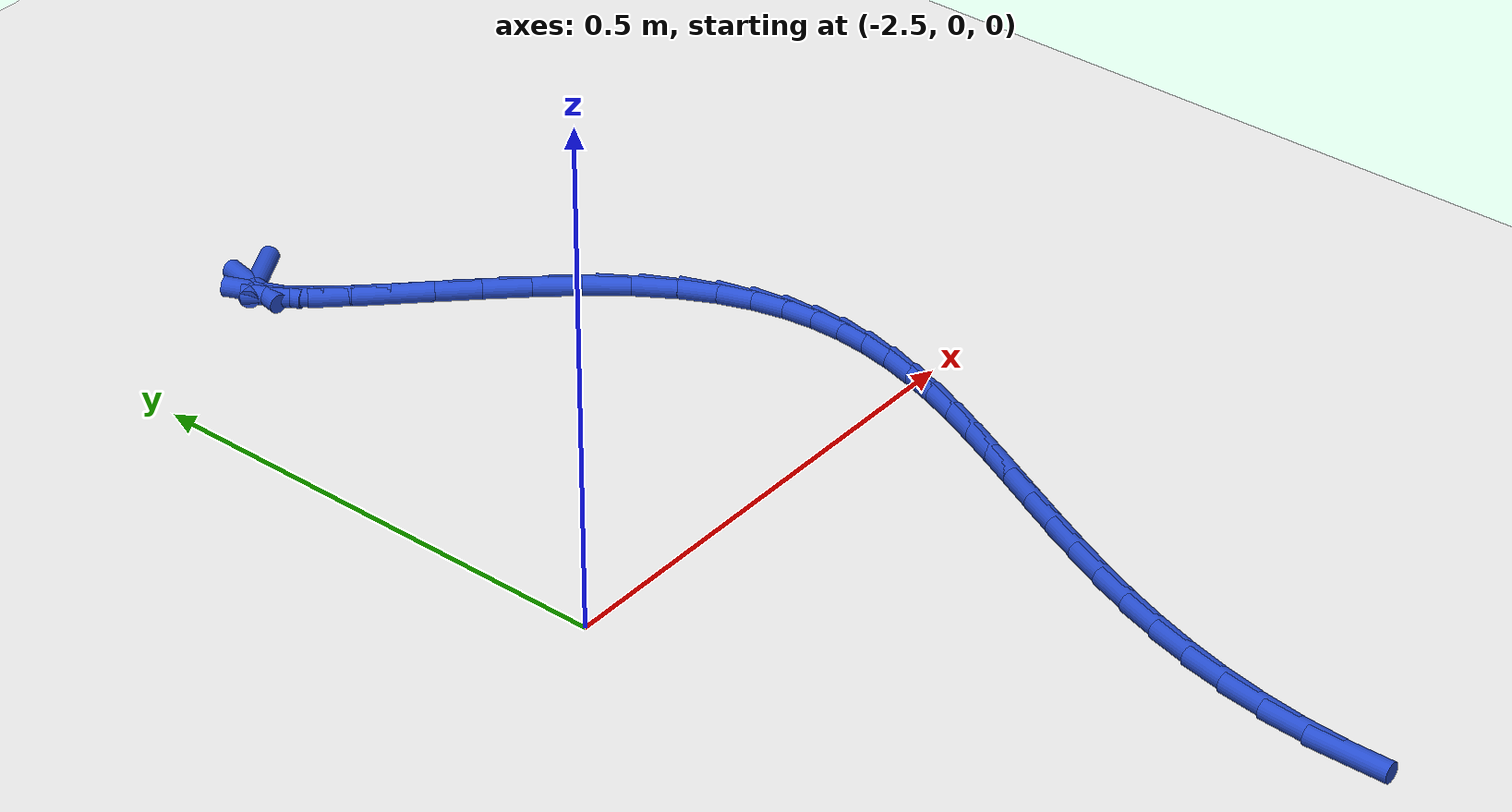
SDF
<sdf version="1.6">
 <world name="default">
  <model name="ground_plane">
   <static>1</static>
   <link name="link">
    <collision name="collision">
     <geometry><plane><normal>0 0 1</normal><size>100 100</size></plane></geometry>
     <surface><friction><ode><mu>100</mu><mu2>50</mu2></ode></friction></surface>
    </collision>
    <visual name="visual">
     <cast_shadows>0</cast_shadows>
     <geometry><plane><normal>0 0 1</normal><size>100 100</size></plane></geometry>
     <material>
      <script><uri>file://media/materials/scripts/gazebo.material</uri><name>Gazebo/WhiteGlow</name></script>
     </material>
    </visual>
   </link>
  </model>
  <model name="line">
   <link name="link_92">
    <pose>-2.295082335609407 0.5904482603423411 0.01 0 1.57 0.5165927510318733</pose>
    <collision name="collision">
     <geometry><cylinder><radius>0.01</radius><length>0.08</length></cylinder></geometry>
    </collision>
    <visual name="visual">
     <material>
      <script><name>Gazebo/Blue</name><uri>file://media/materials/scripts/gazebo.material</uri></script>
     </material>
     <geometry><cylinder><radius>0.01</radius><length>0.08</length></cylinder></geometry>
    </visual>
   </link>
   <link name="link_93">
    <pose>-2.3094861240235307 0.5822662404114661 0.01 0 1.57 1.3817698889250352</pose>
    <collision name="collision">
     <geometry><cylinder><radius>0.01</radius><length>0.08</length></cylinder></geometry>
    </collision>
    <visual name="visual">
     <material>
      <script><name>Gazebo/Blue</name><uri>file://media/materials/scripts/gazebo.material</uri></script>
     </material>
     <geometry><cylinder><radius>0.01</radius><length>0.08</length></cylinder></geometry>
    </visual>
   </link>
   <link name="link_94">
    <pose>-2.3120854596187232 0.5686792380977035 0.01 0 1.57 -1.1672139131677126</pose>
    <collision name="collision">
     <geometry><cylinder><radius>0.01</radius><length>0.08</length></cylinder></geometry>
    </collision>
    <visual name="visual">
     <material>
      <script><name>Gazebo/Blue</name><uri>file://media/materials/scripts/gazebo.material</uri></script>
     </material>
     <geometry><cylinder><radius>0.01</radius><length>0.08</length></cylinder></geometry>
    </visual>
   </link>
   <link name="link_95">
    <pose>-2.304131943537028 0.5500537150005254 0.01 0 1.57 -0.942856019653997</pose>
    <collision name="collision">
     <geometry><cylinder><radius>0.01</radius><length>0.08</length></cylinder></geometry>
    </collision>
    <visual name="visual">
     <material>
      <script><name>Gazebo/Blue</name><uri>file://media/materials/scripts/gazebo.material</uri></script>
     </material>
     <geometry><cylinder><radius>0.01</radius><length>0.08</length></cylinder></geometry>
    </visual>
   </link>
   <link name="link_96">
    <pose>-2.2874250323451846 0.5270403252279731 0.01 0 1.57 -0.8466122772430559</pose>
    <collision name="collision">
     <geometry><cylinder><radius>0.01</radius><length>0.08</length></cylinder></geometry>
    </collision>
    <visual name="visual">
     <material>
      <script><name>Gazebo/Blue</name><uri>file://media/materials/scripts/gazebo.material</uri></script>
     </material>
     <geometry><cylinder><radius>0.01</radius><length>0.08</length></cylinder></geometry>
    </visual>
   </link>
   <link name="link_97">
    <pose>-2.263764182609938 0.5002897228880877 0.01 0 1.57 -0.8028181515578986</pose>
    <collision name="collision">
     <geometry><cylinder><radius>0.01</radius><length>0.08</length></cylinder></geometry>
    </collision>
    <visual name="visual">
     <material>
      <script><name>Gazebo/Blue</name><uri>file://media/materials/scripts/gazebo.material</uri></script>
     </material>
     <geometry><cylinder><radius>0.01</radius><length>0.08</length></cylinder></geometry>
    </visual>
   </link>
   <link name="link_98">
    <pose>-2.234948850898027 0.4704525620889099 0.01 0 1.57 -0.7869919325985835</pose>
    <collision name="collision">
     <geometry><cylinder><radius>0.01</radius><length>0.08</length></cylinder></geometry>
    </collision>
    <visual name="visual">
     <material>
      <script><name>Gazebo/Blue</name><uri>file://media/materials/scripts/gazebo.material</uri></script>
     </material>
     <geometry><cylinder><radius>0.01</radius><length>0.08</length></cylinder></geometry>
    </visual>
   </link>
   <link name="link_99">
    <pose>-2.2027784937761945 0.43817949693848135 0.01 0 1.57 -0.7903017627861353</pose>
    <collision name="collision">
     <geometry><cylinder><radius>0.01</radius><length>0.08</length></cylinder></geometry>
    </collision>
    <visual name="visual">
     <material>
      <script><name>Gazebo/Blue</name><uri>file://media/materials/scripts/gazebo.material</uri></script>
     </material>
     <geometry><cylinder><radius>0.01</radius><length>0.08</length></cylinder></geometry>
    </visual>
   </link>
   <link name="link_100">
    <pose>-2.169052567811182 0.40412118154484244 0.01 0 1.57 -0.8103056366462222</pose>
    <collision name="collision">
     <geometry><cylinder><radius>0.01</radius><length>0.08</length></cylinder></geometry>
    </collision>
    <visual name="visual">
     <material>
      <script><name>Gazebo/Blue</name><uri>file://media/materials/scripts/gazebo.material</uri></script>
     </material>
     <geometry><cylinder><radius>0.01</radius><length>0.08</length></cylinder></geometry>
    </visual>
   </link>
   <link name="link_101">
    <pose>-2.13557052956973 0.3689282700160351 0.01 0 1.57 -0.8484616394778578</pose>
    <collision name="collision">
     <geometry><cylinder><radius>0.01</radius><length>0.08</length></cylinder></geometry>
    </collision>
    <visual name="visual">
     <material>
      <script><name>Gazebo/Blue</name><uri>file://media/materials/scripts/gazebo.material</uri></script>
     </material>
     <geometry><cylinder><radius>0.01</radius><length>0.08</length></cylinder></geometry>
    </visual>
   </link>
   <link name="link_102">
    <pose>-2.1041318356185816 0.3332514164600996 0.01 0 1.57 -0.9101572736790751</pose>
    <collision name="collision">
     <geometry><cylinder><radius>0.01</radius><length>0.08</length></cylinder></geometry>
    </collision>
    <visual name="visual">
     <material>
      <script><name>Gazebo/Blue</name><uri>file://media/materials/scripts/gazebo.material</uri></script>
     </material>
     <geometry><cylinder><radius>0.01</radius><length>0.08</length></cylinder></geometry>
    </visual>
   </link>
   <link name="link_103">
    <pose>-2.076535830326002 0.29774123595889956 0.01 0 1.57 -0.9996466485878992</pose>
    <collision name="collision">
     <geometry><cylinder><radius>0.01</radius><length>0.08</length></cylinder></geometry>
    </collision>
    <visual name="visual">
     <material>
      <script><name>Gazebo/Blue</name><uri>file://media/materials/scripts/gazebo.material</uri></script>
     </material>
     <geometry><cylinder><radius>0.01</radius><length>0.08</length></cylinder></geometry>
    </visual>
   </link>
   <link name="link_104">
    <pose>-2.0541447678489075 0.26289630979714157 0.01 0 1.57 -1.1033463470347913</pose>
    <collision name="collision">
     <geometry><cylinder><radius>0.01</radius><length>0.08</length></cylinder></geometry>
    </collision>
    <visual name="visual">
     <material>
      <script><name>Gazebo/Blue</name><uri>file://media/materials/scripts/gazebo.material</uri></script>
     </material>
     <geometry><cylinder><radius>0.01</radius><length>0.08</length></cylinder></geometry>
    </visual>
   </link>
   <link name="link_105">
    <pose>-2.0368931600234994 0.2287186053323761 0.01 0 1.57 -1.215550920008642</pose>
    <collision name="collision">
     <geometry><cylinder><radius>0.01</radius><length>0.08</length></cylinder></geometry>
    </collision>
    <visual name="visual">
     <material>
      <script><name>Gazebo/Blue</name><uri>file://media/materials/scripts/gazebo.material</uri></script>
     </material>
     <geometry><cylinder><radius>0.01</radius><length>0.08</length></cylinder></geometry>
    </visual>
   </link>
   <link name="link_106">
    <pose>-2.0244244703879404 0.19510885412057657 0.01 0 1.57 -1.332729284321835</pose>
    <collision name="collision">
     <geometry><cylinder><radius>0.01</radius><length>0.08</length></cylinder></geometry>
    </collision>
    <visual name="visual">
     <material>
      <script><name>Gazebo/Blue</name><uri>file://media/materials/scripts/gazebo.material</uri></script>
     </material>
     <geometry><cylinder><radius>0.01</radius><length>0.08</length></cylinder></geometry>
    </visual>
   </link>
   <link name="link_107">
    <pose>-2.0163821624803893 0.16196778771771755 0.01 0 1.57 -1.4501684052458317</pose>
    <collision name="collision">
     <geometry><cylinder><radius>0.01</radius><length>0.08</length></cylinder></geometry>
    </collision>
    <visual name="visual">
     <material>
      <script><name>Gazebo/Blue</name><uri>file://media/materials/scripts/gazebo.material</uri></script>
     </material>
     <geometry><cylinder><radius>0.01</radius><length>0.08</length></cylinder></geometry>
    </visual>
   </link>
   <link name="link_108">
    <pose>-2.0124096998390084 0.12919613767977212 0.01 0 1.57 -1.5628229000853726</pose>
    <collision name="collision">
     <geometry><cylinder><radius>0.01</radius><length>0.08</length></cylinder></geometry>
    </collision>
    <visual name="visual">
     <material>
      <script><name>Gazebo/Blue</name><uri>file://media/materials/scripts/gazebo.material</uri></script>
     </material>
     <geometry><cylinder><radius>0.01</radius><length>0.08</length></cylinder></geometry>
    </visual>
   </link>
   <link name="link_109">
    <pose>-2.0121505460019575 0.09669463556271514 0.01 0 1.57 1.4752772265623568</pose>
    <collision name="collision">
     <geometry><cylinder><radius>0.01</radius><length>0.08</length></cylinder></geometry>
    </collision>
    <visual name="visual">
     <material>
      <script><name>Gazebo/Blue</name><uri>file://media/materials/scripts/gazebo.material</uri></script>
     </material>
     <geometry><cylinder><radius>0.01</radius><length>0.08</length></cylinder></geometry>
    </visual>
   </link>
   <link name="link_110">
    <pose>-2.015248164507398 0.06436401292251959 0.01 0 1.57 1.3839727422942716</pose>
    <collision name="collision">
     <geometry><cylinder><radius>0.01</radius><length>0.08</length></cylinder></geometry>
    </collision>
    <visual name="visual">
     <material>
      <script><name>Gazebo/Blue</name><uri>file://media/materials/scripts/gazebo.material</uri></script>
     </material>
     <geometry><cylinder><radius>0.01</radius><length>0.08</length></cylinder></geometry>
    </visual>
   </link>
   <link name="link_111">
    <pose>-2.02134601889349 0.03210500131516027 0.01 0 1.57 1.3063873686658811</pose>
    <collision name="collision">
     <geometry><cylinder><radius>0.01</radius><length>0.08</length></cylinder></geometry>
    </collision>
    <visual name="visual">
     <material>
      <script><name>Gazebo/Blue</name><uri>file://media/materials/scripts/gazebo.material</uri></script>
     </material>
     <geometry><cylinder><radius>0.01</radius><length>0.08</length></cylinder></geometry>
    </visual>
   </link>
   <link name="link_112">
    <pose>-2.030087572698396 -0.00018166770338928773 0.01 0 1.57 1.242833988352031</pose>
    <collision name="collision">
     <geometry><cylinder><radius>0.01</radius><length>0.08</length></cylinder></geometry>
    </collision>
    <visual name="visual">
     <material>
      <script><name>Gazebo/Blue</name><uri>file://media/materials/scripts/gazebo.material</uri></script>
     </material>
     <geometry><cylinder><radius>0.01</radius><length>0.08</length></cylinder></geometry>
    </visual>
   </link>
   <link name="link_113">
    <pose>-2.0411162894602755 -0.032595262577155205 0.01 0 1.57 1.1928431807356714</pose>
    <collision name="collision">
     <geometry><cylinder><radius>0.01</radius><length>0.08</length></cylinder></geometry>
    </collision>
    <visual name="visual">
     <material>
      <script><name>Gazebo/Blue</name><uri>file://media/materials/scripts/gazebo.material</uri></script>
     </material>
     <geometry><cylinder><radius>0.01</radius><length>0.08</length></cylinder></geometry>
    </visual>
   </link>
   <link name="link_114">
    <pose>-2.05407563271729 -0.06523505175016431 0.01 0 1.57 1.155559714675337</pose>
    <collision name="collision">
     <geometry><cylinder><radius>0.01</radius><length>0.08</length></cylinder></geometry>
    </collision>
    <visual name="visual">
     <material>
      <script><name>Gazebo/Blue</name><uri>file://media/materials/scripts/gazebo.material</uri></script>
     </material>
     <geometry><cylinder><radius>0.01</radius><length>0.08</length></cylinder></geometry>
    </visual>
   </link>
   <link name="link_115">
    <pose>-2.0686090660076006 -0.09820030366644109 0.01 0 1.57 1.1300211076475193</pose>
    <collision name="collision">
     <geometry><cylinder><radius>0.01</radius><length>0.08</length></cylinder></geometry>
    </collision>
    <visual name="visual">
     <material>
      <script><name>Gazebo/Blue</name><uri>file://media/materials/scripts/gazebo.material</uri></script>
     </material>
     <geometry><cylinder><radius>0.01</radius><length>0.08</length></cylinder></geometry>
    </visual>
   </link>
   <link name="link_116">
    <pose>-2.084360052869367 -0.13159028677001244 0.01 0 1.57 1.1153197230793448</pose>
    <collision name="collision">
     <geometry><cylinder><radius>0.01</radius><length>0.08</length></cylinder></geometry>
    </collision>
    <visual name="visual">
     <material>
      <script><name>Gazebo/Blue</name><uri>file://media/materials/scripts/gazebo.material</uri></script>
     </material>
     <geometry><cylinder><radius>0.01</radius><length>0.08</length></cylinder></geometry>
    </visual>
   </link>
   <link name="link_117">
    <pose>-2.1009720568407513 -0.16550426950490438 0.01 0 1.57 1.1106790209162076</pose>
    <collision name="collision">
     <geometry><cylinder><radius>0.01</radius><length>0.08</length></cylinder></geometry>
    </collision>
    <visual name="visual">
     <material>
      <script><name>Gazebo/Blue</name><uri>file://media/materials/scripts/gazebo.material</uri></script>
     </material>
     <geometry><cylinder><radius>0.01</radius><length>0.08</length></cylinder></geometry>
    </visual>
   </link>
   <link name="link_118">
    <pose>-2.118088541459915 -0.20004152031514394 0.01 0 1.57 1.1154749822558194</pose>
    <collision name="collision">
     <geometry><cylinder><radius>0.01</radius><length>0.08</length></cylinder></geometry>
    </collision>
    <visual name="visual">
     <material>
      <script><name>Gazebo/Blue</name><uri>file://media/materials/scripts/gazebo.material</uri></script>
     </material>
     <geometry><cylinder><radius>0.01</radius><length>0.08</length></cylinder></geometry>
    </visual>
   </link>
   <link name="link_119">
    <pose>-2.1353529702650165 -0.23530130764475538 0.01 0 1.57 1.1292247189239262</pose>
    <collision name="collision">
     <geometry><cylinder><radius>0.01</radius><length>0.08</length></cylinder></geometry>
    </collision>
    <visual name="visual">
     <material>
      <script><name>Gazebo/Blue</name><uri>file://media/materials/scripts/gazebo.material</uri></script>
     </material>
     <geometry><cylinder><radius>0.01</radius><length>0.08</length></cylinder></geometry>
    </visual>
   </link>
   <link name="link_120">
    <pose>-2.152408806794219 -0.2713828999377657 0.01 0 1.57 1.1515551536540487</pose>
    <collision name="collision">
     <geometry><cylinder><radius>0.01</radius><length>0.08</length></cylinder></geometry>
    </collision>
    <visual name="visual">
     <material>
      <script><name>Gazebo/Blue</name><uri>file://media/materials/scripts/gazebo.material</uri></script>
     </material>
     <geometry><cylinder><radius>0.01</radius><length>0.08</length></cylinder></geometry>
    </visual>
   </link>
   <link name="link_121">
    <pose>-2.168899514585682 -0.30838556563820096 0.01 0 1.57 1.1821582759924423</pose>
    <collision name="collision">
     <geometry><cylinder><radius>0.01</radius><length>0.08</length></cylinder></geometry>
    </collision>
    <visual name="visual">
     <material>
      <script><name>Gazebo/Blue</name><uri>file://media/materials/scripts/gazebo.material</uri></script>
     </material>
     <geometry><cylinder><radius>0.01</radius><length>0.08</length></cylinder></geometry>
    </visual>
   </link>
   <link name="link_122">
    <pose>-2.1844685571775675 -0.34640857319008816 0.01 0 1.57 1.2207361351096806</pose>
    <collision name="collision">
     <geometry><cylinder><radius>0.01</radius><length>0.08</length></cylinder></geometry>
    </collision>
    <visual name="visual">
     <material>
      <script><name>Gazebo/Blue</name><uri>file://media/materials/scripts/gazebo.material</uri></script>
     </material>
     <geometry><cylinder><radius>0.01</radius><length>0.08</length></cylinder></geometry>
    </visual>
   </link>
   <link name="link_123">
    <pose>-2.198759398108036 -0.3855511910374515 0.01 0 1.57 1.2669381170629712</pose>
    <collision name="collision">
     <geometry><cylinder><radius>0.01</radius><length>0.08</length></cylinder></geometry>
    </collision>
    <visual name="visual">
     <material>
      <script><name>Gazebo/Blue</name><uri>file://media/materials/scripts/gazebo.material</uri></script>
     </material>
     <geometry><cylinder><radius>0.01</radius><length>0.08</length></cylinder></geometry>
    </visual>
   </link>
   <link name="link_124">
    <pose>-2.2114155009152476 -0.425912687624318 0.01 0 1.57 1.3202948292918748</pose>
    <collision name="collision">
     <geometry><cylinder><radius>0.01</radius><length>0.08</length></cylinder></geometry>
    </collision>
    <visual name="visual">
     <material>
      <script><name>Gazebo/Blue</name><uri>file://media/materials/scripts/gazebo.material</uri></script>
     </material>
     <geometry><cylinder><radius>0.01</radius><length>0.08</length></cylinder></geometry>
    </visual>
   </link>
   <link name="link_125">
    <pose>-2.222080329137364 -0.4675923313947137 0.01 0 1.57 1.3801565081688556</pose>
    <collision name="collision">
     <geometry><cylinder><radius>0.01</radius><length>0.08</length></cylinder></geometry>
    </collision>
    <visual name="visual">
     <material>
      <script><name>Gazebo/Blue</name><uri>file://media/materials/scripts/gazebo.material</uri></script>
     </material>
     <geometry><cylinder><radius>0.01</radius><length>0.08</length></cylinder></geometry>
    </visual>
   </link>
   <link name="link_126">
    <pose>-2.230397346312546 -0.510689390792666 0.01 0 1.57 1.4456479643654976</pose>
    <collision name="collision">
     <geometry><cylinder><radius>0.01</radius><length>0.08</length></cylinder></geometry>
    </collision>
    <visual name="visual">
     <material>
      <script><name>Gazebo/Blue</name><uri>file://media/materials/scripts/gazebo.material</uri></script>
     </material>
     <geometry><cylinder><radius>0.01</radius><length>0.08</length></cylinder></geometry>
    </visual>
   </link>
   <link name="link_127">
    <pose>-2.236010015978955 -0.5553031342621984 0.01 0 1.57 1.5156543069059292</pose>
    <collision name="collision">
     <geometry><cylinder><radius>0.01</radius><length>0.08</length></cylinder></geometry>
    </collision>
    <visual name="visual">
     <material>
      <script><name>Gazebo/Blue</name><uri>file://media/materials/scripts/gazebo.material</uri></script>
     </material>
     <geometry><cylinder><radius>0.01</radius><length>0.08</length></cylinder></geometry>
    </visual>
   </link>
   <link name="link_128">
    <pose>-2.2385618016747504 -0.6015328302473383 0.01 0 1.57 -1.5533124121292867</pose>
    <collision name="collision">
     <geometry><cylinder><radius>0.01</radius><length>0.08</length></cylinder></geometry>
    </collision>
    <visual name="visual">
     <material>
      <script><name>Gazebo/Blue</name><uri>file://media/materials/scripts/gazebo.material</uri></script>
     </material>
     <geometry><cylinder><radius>0.01</radius><length>0.08</length></cylinder></geometry>
    </visual>
   </link>
  </model>
 </world>
</sdf>
